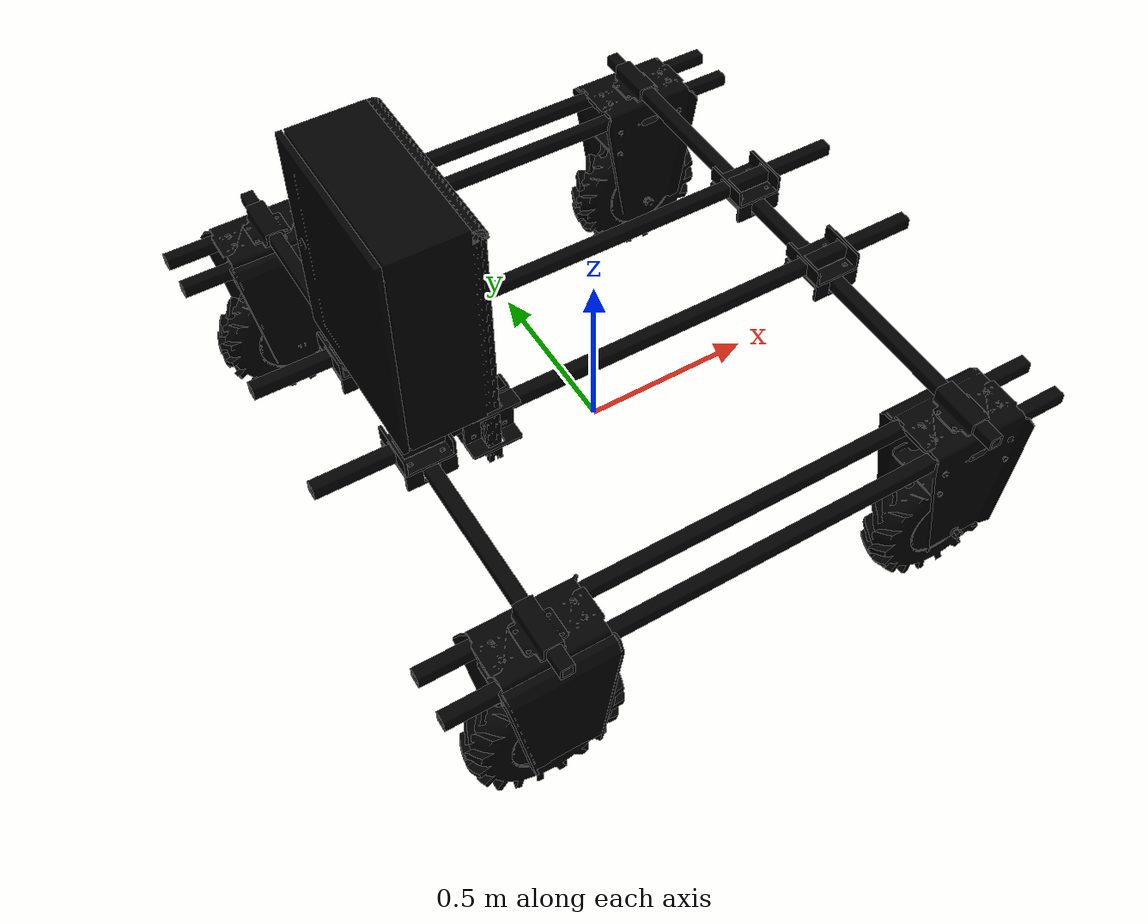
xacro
<?xml version="1.0"?>
<robot xmlns:xacro="http://www.ros.org/wiki/xacro" name="amiga">
<xacro:arg name="is_sim" default="true" />

<link name="base_footprint"/>

<link name="base_link">
</link>

<joint name="base_joint" type="fixed">
    <origin xyz="0.0 0.0 -0.22" rpy="0.0 0.0 0.0"/>
    <parent link="base_link"/>
    <child link="base_footprint"/>
    <axis xyz="0.0 0.0 0.0"/>
</joint>

<!-- All Wheel links and joints -->
<link name="inertial_link">
    <inertial>
        <origin xyz="0.0 0.0 0.22" rpy="0.0 0.0 0.0"/>
        <mass value="158.0"/>
        <inertia ixx="43.75" ixy="0.0" ixz="0.0"
                 iyy="32.74" iyz="0.0"
                 izz="50.15"/>
        </inertial>
  </link>

  <joint name="inertial_joint" type="fixed">
    <origin xyz="0 0 0" rpy="0 0 0" />
    <parent link="base_link" />
    <child link="inertial_link" />
  </joint>

  <link name="imu_link"/>
  <joint name="imu_joint" type="fixed">
    <origin xyz="0 0 0" rpy="0 0 0" />
    <parent link="base_link" />
    <child link="imu_link" />
  </joint>
  <gazebo reference="imu_link">
  </gazebo>
<xacro:macro name="wheel" params="name x y yaw">

    <link name="wheel_${name}_link">
        <inertial>
            <origin xyz="0.0 0.0 0.0" rpy="0.0 0.0 ${yaw}"/>
            <mass value="0.5"/>
            <inertia ixx="0.0" ixy="0.0" ixz="0.0" iyy="0.0" iyz="0.0" izz="0.0"/>
        </inertial>
        <visual name="">
            <origin xyz="0.0 0.0 0.0" rpy="0.0 0.0 ${yaw}"/>
            <geometry>
                <mesh filename="package://amiga_description/meshes/test_hub/test_hub.obj" scale="1.0 1.0 1.0"/>
            </geometry>
            <material name="black">
                <color rgba=".0 .0 0.0 1.0"/>
            </material>
        </visual>
        <collision>
            <origin xyz="0.0 0.0 0.0" rpy="0.0 0.0 ${yaw}"/>
            <geometry>
                <mesh filename="package://amiga_description/meshes/test_hub/test_hub.obj" scale="1.0 1.0 1.0"/>
            </geometry>
        </collision>
    </link>

    <joint name="wheel_${name}_joint" type="fixed">
        <origin xyz="${x} ${y} .0" rpy="0 0.0 0.0"/>
        <parent link="base_link"/>
        <child link="wheel_${name}_link"/>
        <axis xyz="0.0 0.0 0.0"/>
    </joint>

</xacro:macro>

<!-- Wheel Creating using macros -->
<xacro:wheel name="front_left"  x="0.6096" y =" 0.762" yaw = "3.141"/>
<xacro:wheel name="front_right" x="0.6096" y =" -0.762" yaw = "3.141"/>
<xacro:wheel name="rear_right"  x="-0.6096" y =" -0.762" yaw = "0.0"/>
<xacro:wheel name="rear_left"   x="-0.6096" y =" 0.762" yaw = "0.0"/>

<xacro:macro name="clamp" params="name">
	<link name="clamp_${name}_link">
        <inertial>
            <origin xyz="0.0 0.0 0.0" rpy="0.0 0.0 0.0"/>
            <mass value="0.5"/>
            <inertia ixx="0.0" ixy="0.0" ixz="0.0" iyy="0.0" iyz="0.0" izz="0.0"/>
        </inertial>
        <visual name="">
            <origin xyz="0.0 0.0 0.0" rpy="0.0 0.0 0.0"/>
            <geometry>
                <mesh filename="package://amiga_description/meshes/clamp/clamp.obj" scale="1.0 1.0 1.0"/>
            </geometry>
            <material name="black">
                <color rgba=".0 .0 0.0 1.0"/>
            </material>
        </visual>
        <collision>
            <origin xyz="0.0 0.0 0.0" rpy="0.0 0.0 0.0"/>
            <geometry>
                <mesh filename="package://amiga_description/meshes/clamp/clamp.obj" scale="1.0 1.0 1.0"/>
            </geometry>
        </collision>
    </link>

    <joint name="clamp_${name}_joint" type="fixed">
        <origin xyz="0.0 0.0 .395" rpy="0 0.0 0.0"/>
        <parent link="wheel_${name}_link"/>
        <child link="clamp_${name}_link"/>
        <axis xyz="0.0 0.0 0.0"/>
    </joint>
</xacro:macro>

<xacro:clamp name="rear_right" />
<xacro:clamp name="front_right"/>
<xacro:clamp name="front_left" />
<xacro:clamp name="rear_left"  />

<xacro:macro name="multiclamp" params="name x y z raw pitch yaw">
	<link name="multiclamp_${name}_link">
        <inertial>
            <origin xyz="0.0 0.0 0.0" rpy="${raw} ${pitch} ${yaw}"/>
            <mass value="0.5"/>
            <inertia ixx="0.0" ixy="0.0" ixz="0.0" iyy="0.0" iyz="0.0" izz="0.0"/>
        </inertial>
        <visual name="">
            <origin xyz="0.0 0.0 0.0" rpy="${raw} ${pitch} ${yaw}"/>
            <geometry>
                <mesh filename="package://amiga_description/meshes/MultiClamp/MultiClamp.obj" scale="1.2 1.2 1.2"/>
            </geometry>
            <material name="black">
                <color rgba=".0 .0 0.0 1.0"/>
            </material>
        </visual>
        <collision>
            <origin xyz="0.0 0.0 0.0" rpy="0.0 0.0 0.0"/>
            <geometry>
                <mesh filename="package://amiga_description/meshes/MultiClamp/MultiClamp.obj" scale="1.2 1.2 1.2"/>
            </geometry>
        </collision>
    </link>

    <joint name="multiclamp_${name}_joint" type="fixed">
        <origin xyz="${x} ${y} ${z}" rpy="0 0.0 0.0"/>
        <parent link="base_link"/>
        <child link="multiclamp_${name}_link"/>
        <axis xyz="0.0 0.0 0.0"/>
    </joint>
</xacro:macro>
<xacro:multiclamp name="multi1" x="0.6096" y =" 0.18" z = ".435" raw = "-1.571" pitch ="0.0" yaw = "0"/>
<xacro:multiclamp name="multi2" x="0.6096" y =" 0.18" z = ".435" raw = "-1.571" pitch ="3.14" yaw = "1.571"/>
<xacro:multiclamp name="multi3" x="0.6096" y =" -0.18" z = ".435" raw = "-1.571" pitch ="0.0" yaw = "0"/>
<xacro:multiclamp name="multi4" x="0.6096" y =" -0.18" z = ".435" raw = "-1.571" pitch ="3.14" yaw = "1.571"/>
<xacro:multiclamp name="multi5" x="-0.6096" y =" 0.18" z = ".435" raw = "-1.571" pitch ="0.0" yaw = "0"/>
<xacro:multiclamp name="multi6" x="-0.6096" y =" 0.18" z = ".435" raw = "-1.571" pitch ="3.14" yaw = "1.571"/>
<xacro:multiclamp name="multi7" x="-0.6096" y =" -0.18" z = ".435" raw = "-1.571" pitch ="0.0" yaw = "0"/>
<xacro:multiclamp name="multi8" x="-0.6096" y =" -0.18" z = ".435" raw = "-1.571" pitch ="3.14" yaw = "1.571"/>
<xacro:multiclamp name="multi9" x="-0.43" y =" 0.20" z = ".46" raw = "0.0" pitch ="0.0" yaw = "0.0"/>
<xacro:multiclamp name="multi10" x="-0.43" y =" 0.20" z = ".46" raw = "0.0" pitch ="1.571" yaw = "3.14"/>
<xacro:multiclamp name="multi11" x="-0.43" y =" -0.20" z = ".46" raw = "0.0" pitch ="0.0" yaw = "3.14"/>
<xacro:multiclamp name="multi12" x="-0.43" y =" -0.20" z = ".46" raw = "0.0" pitch ="1.571" yaw = "0.0"/>
<!-- All crossbeams links and joints -->
<xacro:macro name="crossbeam" params="name x y z yaw ">

    <link name="crossbeam_${name}_link">
        <inertial>
            <origin xyz="0.0 0.0 0.0" rpy="0.0 0.0 ${yaw}"/>
            <mass value="0.5"/>
            <inertia ixx="0.0" ixy="0.0" ixz="0.0" iyy="0.0" iyz="0.0" izz="0.0"/>
        </inertial>
        <visual name="">
            <origin xyz="0.0 0.0 0.0" rpy="0.0 0.0 ${yaw}"/>
            <geometry>
                <mesh filename="package://amiga_description/meshes/LCrossbeam/LCrossbeam.obj" scale="1.0 1.3 1.0"/>
            </geometry>
            <material name="black">
                <color rgba=".0 .0 0.0 1.0"/>
            </material>
        </visual>
        <collision>
            <origin xyz="0.0 0.0 0.0" rpy="0.0 0.0 ${yaw}"/>
            <geometry>
                <mesh filename="package://amiga_description/meshes/LCrossbeam/LCrossbeam.obj" scale="1.0 1.3 1.0"/>
            </geometry>
        </collision>
    </link>

    <joint name="crossbeam_${name}_joint" type="fixed">
        <origin xyz="${x} ${y} ${z}" rpy="0 0.0 0.0"/>
        <parent link="base_link"/>
        <child link="crossbeam_${name}_link"/>
        <axis xyz="0.0 0.0 0.0"/>
    </joint>

</xacro:macro>
<xacro:crossbeam name="back"  x="0.6096" y =" 0.0" z = "0.417" yaw = "0.0" />
<xacro:crossbeam name="front"  x="-0.6096" y =" 0.0" z = "0.417" yaw = "0.0" />
<xacro:crossbeam name="left1"  x="0.0" y =" 0.70" z = "0.36" yaw = "1.571" />
<xacro:crossbeam name="left2"  x="0.0" y =" 0.824" z = "0.36" yaw = "1.571" />
<xacro:crossbeam name="right1"  x="0.0" y =" -0.70" z = "0.36" yaw = "1.571" />
<xacro:crossbeam name="right2"  x="0.0" y =" -0.824" z = "0.36" yaw = "1.571" />
<xacro:crossbeam name="middle1"  x="0.0" y =" 0.18" z = "0.455" yaw = "1.571" />
<xacro:crossbeam name="middle2"  x="0.0" y =" -0.18" z = "0.455" yaw = "1.571" />

<xacro:macro name="tire" params="name x y z">
	<link name="tire_${name}_link">
        <inertial>
            <origin xyz="0.0 0.0 0.0" rpy="0.0 0.0 0.0"/>
            <mass value="10"/>
            <inertia ixx="0.13975" ixy="0.0" ixz="0.0" iyy="0.242" iyz="0.0" izz="0.13975"/>
        </inertial>
        <visual name="">
            <origin xyz="0.0 0.0 0.0" rpy="0.0 0.0 0.0"/>
            <geometry>
                <mesh filename="package://amiga_description/meshes/tire/tire.obj" scale="1.0 1.0 1.0"/>
            </geometry>
            <material name="black">
                <color rgba=".0 .0 0.0 1.0"/>
            </material>
        </visual>
        <collision>
            <origin xyz="0.0 0.0 0.0" rpy="0.0 0.0 0.0"/>
            <geometry>
                <mesh filename="package://amiga_description/meshes/tire/tire.obj" scale="1.0 1.0 1.0"/>
            </geometry>
        </collision>
    </link>

    <joint name="tire_${name}_joint" type="continuous">
        <origin xyz="${x} ${y} ${z}" rpy="0 0.0 0.0"/>
        <parent link="base_link"/>
        <child link="tire_${name}_link"/>
        <axis xyz="0.0 1.0 0.0"/>
    </joint>
</xacro:macro>

<xacro:tire name="rear_right" x="-0.6096" y="-0.762" z="0.00" />
<xacro:tire name="front_right" x="0.6096" y="-0.762" z="0.00" />
<xacro:tire name="front_left" x="0.6096" y="0.762" z="0.00" />
<xacro:tire name="rear_left" x="-0.6096" y="0.762" z="0.00" />

<!-- Ebox -->
<link name="Ebox_link">
    <inertial>
        <origin xyz="-.8 -0.31 0.0" rpy="0.0 0.0 0.0"/>
        <mass value="0.5"/>
        <inertia ixx="0.0" ixy="0.0" ixz="0.0" iyy="0.0" iyz="0.0" izz="0.0"/>
    </inertial>
    <visual name="">
        <origin xyz="-.8 -0.31 0.0" rpy="-1.571 0 -1.571"/>
        <geometry>
            <mesh filename="package://amiga_description/meshes/Ebox/Ebox.obj" scale="1.0 1.0 1.0"/>
        </geometry>
        <material name="black">
            <color rgba=".0 .0 0.0 1.0"/>
        </material>
    </visual>
    <collision>
        <origin xyz="0.0 0.0 0.0" rpy="0.0 0.0 0.0"/>
        <geometry>
            <mesh filename="package://amiga_description/meshes/Ebox/Ebox.obj" scale="1.0 1.0 1.0"/>
        </geometry>
    </collision>
</link>

<joint name="Ebox_joint" type="fixed">
    <origin xyz="0.0 0.0 0.05" rpy="0 0.0 0.0"/>
    <parent link="base_link"/>
    <child link="Ebox_link"/>
    <axis xyz="0.0 0.0 0.0"/>
</joint>

<ros2_control name="GazeboSystem" type="system">

  <hardware>
    <xacro:if value="$(arg is_sim)">
          <plugin>gazebo_ros2_control/GazeboSystem</plugin>
    </xacro:if>
  </hardware>
  <joint name="tire_front_left_joint">
        <command_interface name="velocity">
          <param name="min">-100</param>
          <param name="max">100</param>
        </command_interface>
        <state_interface name="position"/>
        <state_interface name="velocity"/>
      </joint>
      <joint name="tire_rear_left_joint">
        <command_interface name="velocity">
          <param name="min">-100</param>
          <param name="max">100</param>
        </command_interface>
        <state_interface name="position"/>
        <state_interface name="velocity"/>
      </joint>
      <joint name="tire_front_right_joint">
        <command_interface name="velocity">
          <param name="min">-100</param>
          <param name="max">100</param>
        </command_interface>
        <state_interface name="position"/>
        <state_interface name="velocity"/>
      </joint>
      <joint name="tire_rear_right_joint">
        <command_interface name="velocity">
          <param name="min">-100</param>
          <param name="max">100</param>
        </command_interface>
        <state_interface name="position"/>
        <state_interface name="velocity"/>
      </joint>
</ros2_control>
</robot>
